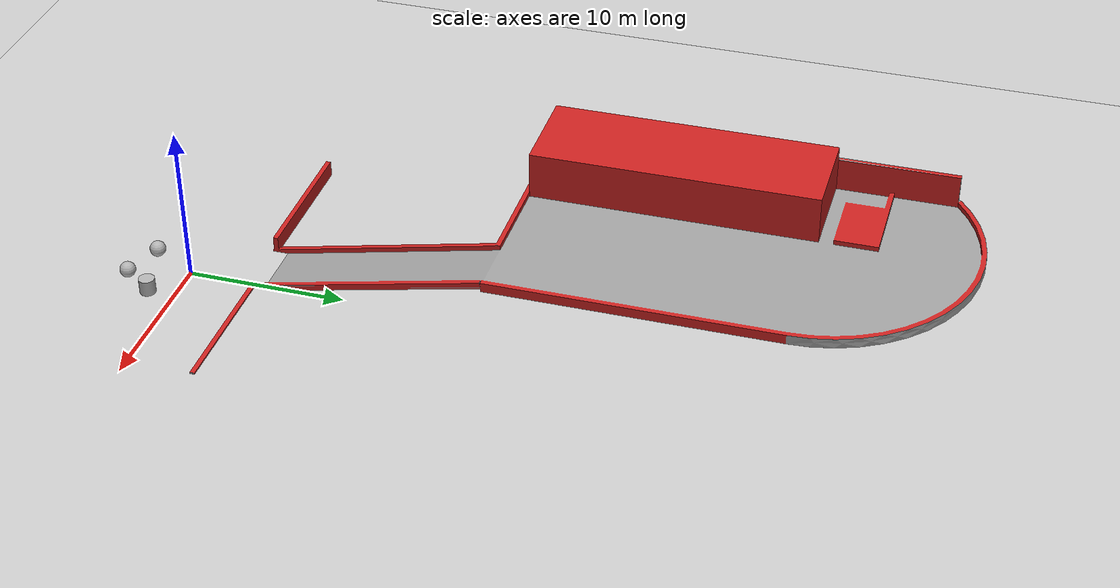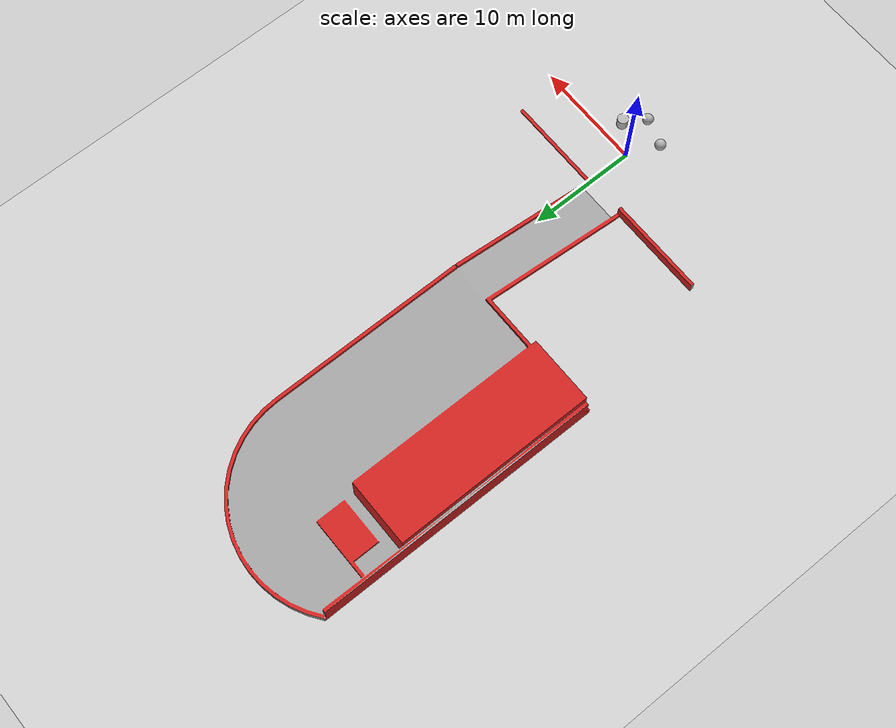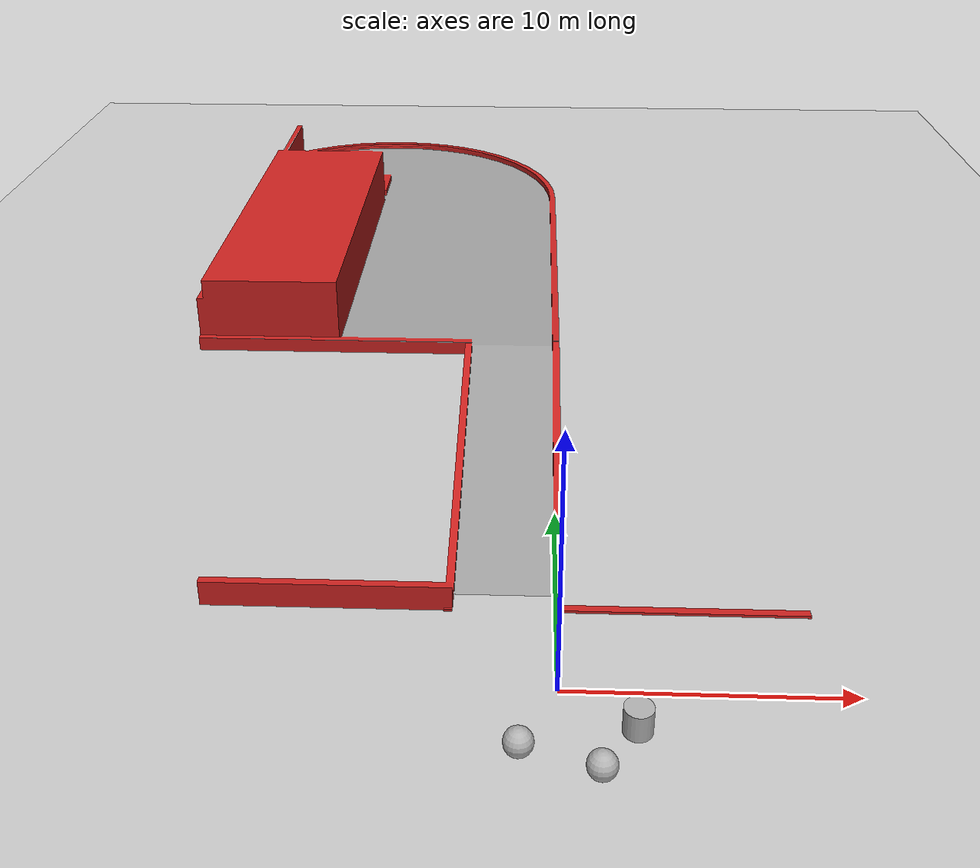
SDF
<sdf version='1.10'>
  <world name='empty'>
    <physics name='1ms' type='ignored'>
      <max_step_size>0.01</max_step_size>
      <real_time_factor>1</real_time_factor>
      <real_time_update_rate>1000</real_time_update_rate>
    </physics>
    <gravity>0 0 -9.8000000000000007</gravity>
    <magnetic_field>5.5644999999999998e-06 2.2875799999999999e-05 -4.2388400000000002e-05</magnetic_field>
    <atmosphere type='adiabatic'/>
    <scene>
      <ambient>0.400000006 0.400000006 0.400000006 1</ambient>
      <background>0.699999988 0.699999988 0.699999988 1</background>
      <shadows>true</shadows>
    </scene>
    <model name='ground_plane'>
      <static>true</static>
      <link name='link'>
        <collision name='collision'>
          <geometry>
            <plane>
              <normal>0 0 1</normal>
              <size>100 100</size>
            </plane>
          </geometry>
          <surface>
            <friction>
              <ode>
                <mu>0.8</mu>
                <mu2>0.8</mu2>
              </ode>
            </friction>
            <bounce/>
            <contact/>
          </surface>
        </collision>
        <visual name='visual'>
          <geometry>
            <plane>
              <normal>0 0 1</normal>
              <size>100 100</size>
            </plane>
          </geometry>
          <material>
            <ambient>0.800000012 0.800000012 0.800000012 1</ambient>
            <diffuse>0.800000012 0.800000012 0.800000012 1</diffuse>
            <specular>0.800000012 0.800000012 0.800000012 1</specular>
          </material>
        </visual>
        <pose>0 0 0 0 0 0</pose>
        <inertial>
          <pose>0 0 0 0 0 0</pose>
          <mass>1</mass>
          <inertia>
            <ixx>1</ixx>
            <ixy>0</ixy>
            <ixz>0</ixz>
            <iyy>1</iyy>
            <iyz>0</iyz>
            <izz>1</izz>
          </inertia>
        </inertial>
        <enable_wind>false</enable_wind>
      </link>
      <pose>0 0 0 0 0 0</pose>
      <self_collide>false</self_collide>
    </model>
    <model name='cylinder'>
      <pose>2.4996803647074355 -1.7120214653368446 0.53332607497845363 0.0027131386142535429 0.00015417512395317888 6.300732504563015e-06</pose>
      <link name='cylinder_link'>
        <inertial>
          <inertia>
            <ixx>0.14580000000000001</ixx>
            <ixy>0</ixy>
            <ixz>0</ixz>
            <iyy>0.14580000000000001</iyy>
            <iyz>0</iyz>
            <izz>0.125</izz>
          </inertia>
          <mass>1</mass>
          <pose>0 0 0 0 0 0</pose>
        </inertial>
        <collision name='cylinder_collision'>
          <geometry>
            <cylinder>
              <radius>0.5</radius>
              <length>1</length>
            </cylinder>
          </geometry>
          <surface>
            <friction>
              <ode/>
            </friction>
            <bounce/>
            <contact/>
          </surface>
        </collision>
        <visual name='cylinder_visual'>
          <geometry>
            <cylinder>
              <radius>0.5</radius>
              <length>1</length>
            </cylinder>
          </geometry>
          <material>
            <ambient>0.300000012 0.300000012 0.300000012 1</ambient>
            <diffuse>0.699999988 0.699999988 0.699999988 1</diffuse>
            <specular>1 1 1 1</specular>
          </material>
        </visual>
        <pose>0 0 0 0 0 0</pose>
        <enable_wind>false</enable_wind>
      </link>
      <static>false</static>
      <self_collide>false</self_collide>
    </model>
    <model name='sphere'>
      <pose>-1.2581936727758221 -2.7498126592616607 0.499999990200098 0 0 0</pose>
      <link name='sphere_link'>
        <inertial>
          <inertia>
            <ixx>0.10000000000000001</ixx>
            <ixy>0</ixy>
            <ixz>0</ixz>
            <iyy>0.10000000000000001</iyy>
            <iyz>0</iyz>
            <izz>0.10000000000000001</izz>
          </inertia>
          <mass>1</mass>
          <pose>0 0 0 0 0 0</pose>
        </inertial>
        <collision name='sphere_collision'>
          <geometry>
            <sphere>
              <radius>0.5</radius>
            </sphere>
          </geometry>
          <surface>
            <friction>
              <ode/>
            </friction>
            <bounce/>
            <contact/>
          </surface>
        </collision>
        <visual name='sphere_visual'>
          <geometry>
            <sphere>
              <radius>0.5</radius>
            </sphere>
          </geometry>
          <material>
            <ambient>0.300000012 0.300000012 0.300000012 1</ambient>
            <diffuse>0.699999988 0.699999988 0.699999988 1</diffuse>
            <specular>1 1 1 1</specular>
          </material>
        </visual>
        <pose>0 0 0 0 0 0</pose>
        <enable_wind>false</enable_wind>
      </link>
      <static>false</static>
      <self_collide>false</self_collide>
    </model>
    <model name='sphere_0'>
      <pose>1.288429648377158 -3.5908630058379987 0.499999990200098 0 0 0</pose>
      <link name='sphere_link'>
        <inertial>
          <inertia>
            <ixx>0.10000000000000001</ixx>
            <ixy>0</ixy>
            <ixz>0</ixz>
            <iyy>0.10000000000000001</iyy>
            <iyz>0</iyz>
            <izz>0.10000000000000001</izz>
          </inertia>
          <mass>1</mass>
          <pose>0 0 0 0 0 0</pose>
        </inertial>
        <collision name='sphere_collision'>
          <geometry>
            <sphere>
              <radius>0.5</radius>
            </sphere>
          </geometry>
          <surface>
            <friction>
              <ode/>
            </friction>
            <bounce/>
            <contact/>
          </surface>
        </collision>
        <visual name='sphere_visual'>
          <geometry>
            <sphere>
              <radius>0.5</radius>
            </sphere>
          </geometry>
          <material>
            <ambient>0.300000012 0.300000012 0.300000012 1</ambient>
            <diffuse>0.699999988 0.699999988 0.699999988 1</diffuse>
            <specular>1 1 1 1</specular>
          </material>
        </visual>
        <pose>0 0 0 0 0 0</pose>
        <enable_wind>false</enable_wind>
      </link>
      <static>false</static>
      <self_collide>false</self_collide>
    </model>
    <model name='Driveway'>
      <link name='link'>
        <visual name='visual'>
          <geometry>
            <mesh>
              <uri>file:///home/indie/garbo_ws/src/garbo/worlds/Driveway/meshes/Driveway.dae</uri>
            </mesh>
          </geometry>
        </visual>
        <collision name='collision'>
          <geometry>
            <mesh>
              <uri>file:///home/indie/garbo_ws/src/garbo/worlds/Driveway/meshes/Driveway.dae</uri>
            </mesh>
          </geometry>
          <surface>
            <friction>
              <ode>
                <mu>0.8</mu>
                <mu2>0.8</mu2>
              </ode>
            </friction>
          </surface>
        </collision>
        <pose>0 0 0 0 0 0</pose>
        <inertial>
          <pose>0 0 0 0 0 0</pose>
          <mass>1</mass>
          <inertia>
            <ixx>1</ixx>
            <ixy>0</ixy>
            <ixz>0</ixz>
            <iyy>1</iyy>
            <iyz>0</iyz>
            <izz>1</izz>
          </inertia>
        </inertial>
        <enable_wind>false</enable_wind>
      </link>
      <pose>-3.7301655356565218 -2.0966974982482873 -0.271565125995621 0.0027146031228186757 0.0001486533794703613 6.7007967251794856e-06</pose>
      <static>true</static>
      <self_collide>false</self_collide>
    </model>
    <light name='sun' type='directional'>
      <pose>0 0 10 0 0 0</pose>
      <cast_shadows>true</cast_shadows>
      <intensity>1</intensity>
      <direction>-0.5 0.10000000000000001 -0.90000000000000002</direction>
      <diffuse>0.800000012 0.800000012 0.800000012 1</diffuse>
      <specular>0.200000003 0.200000003 0.200000003 1</specular>
      <attenuation>
        <range>1000</range>
        <linear>0.01</linear>
        <constant>0.90000000000000002</constant>
        <quadratic>0.001</quadratic>
      </attenuation>
      <spot>
        <inner_angle>0</inner_angle>
        <outer_angle>0</outer_angle>
        <falloff>0</falloff>
      </spot>
    </light>
  </world>
</sdf>
